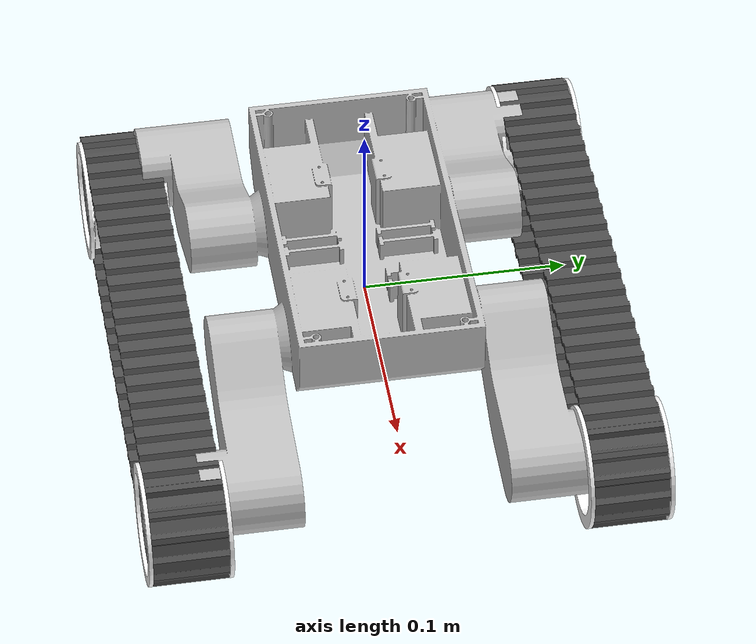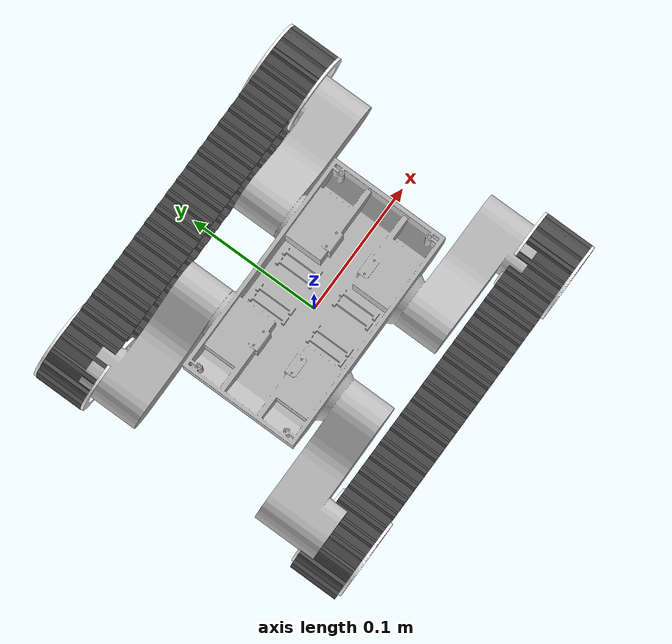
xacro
<?xml version="1.0" encoding="utf-8"?>
<robot
  name="rover">
  <link
    name="base_link">
    <inertial>
      <origin
        xyz="0.00130991626705053 3.49863639654621E-08 -0.00547333121816359"
        rpy="0 0 0" />
      <mass
        value="0.84121706270277" />
      <inertia
        ixx="0.000471900739611814"
        ixy="-2.09182785151012E-08"
        ixz="-1.51956152423411E-05"
        iyy="0.00136894339262334"
        iyz="7.11926294463079E-07"
        izz="0.00158904161906431" />
    </inertial>
    <visual>
      <origin
        xyz="0 0 0"
        rpy="0 0 0" />
      <geometry>
        <mesh
          filename="file:///home/anonymous/dev_ws/src/rover/meshes/base_link.STL" />
      </geometry>
      <material
        name="">
        <color
          rgba="0.752941176470588 0.752941176470588 0.752941176470588 1" />
      </material>
    </visual>
    <collision>
      <origin
        xyz="0 0 0"
        rpy="0 0 0" />
      <geometry>
        <mesh
          filename="file:///home/anonymous/dev_ws/src/rover/meshes/base_link.STL" />
      </geometry>
    </collision>
  </link>

  <gazebo reference="base_link">
    <material>Gazebo/White</material>
    <kp>500000.0</kp>
    <kd>100.0</kd>
  </gazebo>

  <link
    name="front_right_wheel">
    <inertial>
      <origin
        xyz="-8.80747558218431E-12 -4.55740722937747E-11 -0.018857267595084"
        rpy="0 0 0" />
      <mass
        value="0.0169810669319342" />
      <inertia
        ixx="6.69284229296301E-06"
        ixy="-1.60145737158755E-14"
        ixz="-3.42445131865195E-14"
        iyy="6.69284232761491E-06"
        iyz="6.23321803047746E-15"
        izz="9.06807752001078E-06" />
    </inertial>
    <visual>
      <origin
        xyz="0 0 0"
        rpy="0 0 0" />
      <geometry>
        <mesh
          filename="file:///home/anonymous/dev_ws/src/rover/meshes/front_right_wheel.STL" />
      </geometry>
      <material
        name="">
        <color
          rgba="1 1 1 1" />
      </material>
    </visual>
    <collision>
      <origin
        xyz="0 0 0"
        rpy="0 0 0" />
      <geometry>
        <mesh
          filename="file:///home/anonymous/dev_ws/src/rover/meshes/front_right_wheel.STL" />
      </geometry>
    </collision>
  </link>
  <gazebo reference="front_right_wheel">
    <material>Gazebo/White</material>
    <mu1>1</mu1>
    <mu2>1</mu2>
    <kp>500000.0</kp>
    <kd>100.0</kd>
    <minDepth>0.001</minDepth>
    <maxVel>0.1</maxVel>
  </gazebo>

  <joint
    name="base_link_to_front_right_wheel"
    type="continuous">
    <origin
      xyz="0.11729 -0.127 -0.025435"
      rpy="1.5708 -1.5708 0" />
    <parent
      link="base_link" />
    <child
      link="front_right_wheel" />
    <axis
      xyz="0 0 -1" />
  </joint>

  <link
    name="front_left_wheel">
    <inertial>
      <origin
        xyz="-3.26679377993244E-11 -3.29753169214797E-11 -0.018857267595084"
        rpy="0 0 0" />
      <mass
        value="0.0169810669319342" />
      <inertia
        ixx="6.69284228887819E-06"
        ixy="9.91131188776749E-15"
        ixz="-2.49917726405671E-14"
        iyy="6.69284233169973E-06"
        iyz="2.42270686557319E-14"
        izz="9.06807752001078E-06" />
    </inertial>
    <visual>
      <origin
        xyz="0 0 0"
        rpy="0 0 0" />
      <geometry>
        <mesh
          filename="file:///home/anonymous/dev_ws/src/rover/meshes/front_left_wheel.STL" />
      </geometry>
      <material
        name="">
        <color
          rgba="1 1 1 1" />
      </material>
    </visual>
    <collision>
      <origin
        xyz="0 0 0"
        rpy="0 0 0" />
      <geometry>
        <mesh
          filename="file:///home/anonymous/dev_ws/src/rover/meshes/front_left_wheel.STL" />
      </geometry>
    </collision>
  </link>
  <gazebo reference="front_left_wheel">
    <material>Gazebo/White</material>
    <mu1>1</mu1>
    <mu2>1</mu2>
    <kp>500000.0</kp>
    <kd>100.0</kd>
    <minDepth>0.001</minDepth>
    <maxVel>0.1</maxVel>
  </gazebo>

  <joint
    name="base_link_to_front_left_wheel"
    type="continuous">
    <origin
      xyz="0.11886 0.127 -0.019032"
      rpy="1.5708 0 3.1416" />
    <parent
      link="base_link" />
    <child
      link="front_left_wheel" />
    <axis
      xyz="0 0 -1" />
  </joint>

  <link
    name="bottom_right_wheel">
    <inertial>
      <origin
        xyz="2.91839191701726E-11 -3.60952205624709E-11 -0.018857267595084"
        rpy="0 0 0" />
      <mass
        value="0.0169810669319343" />
      <inertia
        ixx="6.69284232901609E-06"
        ixy="-1.43509532055096E-14"
        ixz="-2.68277882490126E-14"
        iyy="6.69284229156184E-06"
        iyz="-2.21767763461171E-14"
        izz="9.06807752001078E-06" />
    </inertial>
    <visual>
      <origin
        xyz="0 0 0"
        rpy="0 0 0" />
      <geometry>
        <mesh
          filename="file:///home/anonymous/dev_ws/src/rover/meshes/bottom_right_wheel.STL" />
      </geometry>
      <material
        name="">
        <color
          rgba="1 1 1 1" />
      </material>
    </visual>
    <collision>
      <origin
        xyz="0 0 0"
        rpy="0 0 0" />
      <geometry>
        <mesh
          filename="file:///home/anonymous/dev_ws/src/rover/meshes/bottom_right_wheel.STL" />
      </geometry>
    </collision>
  </link>
    <gazebo reference="bottom_right_wheel">
    <mu1>1</mu1>
    <mu2>1</mu2>
    <kp>500000.0</kp>
    <kd>100.0</kd>
    <minDepth>0.001</minDepth>
    <maxVel>0.1</maxVel>
  </gazebo>

  <joint
    name="base_link_bottom_right_wheel"
    type="continuous">
    <origin
      xyz="-0.11353 -0.127 -0.029416"
      rpy="1.5708 0 0" />
    <parent
      link="base_link" />
    <child
      link="bottom_right_wheel" />
    <axis
      xyz="0 0 -1" />
  </joint>

  <link
    name="bottom_left_wheel">
    <inertial>
      <origin
        xyz="-1.02049202421739E-11 4.52816482227059E-11 -0.0188572675950841"
        rpy="0 0 0" />
      <mass
        value="0.0169810669319342" />
      <inertia
        ixx="6.69284231029886E-06"
        ixy="-2.35935358930951E-14"
        ixz="3.38705119976577E-14"
        iyy="6.69284231027906E-06"
        iyz="8.02048078850473E-15"
        izz="9.06807752001078E-06" />
    </inertial>
    <visual>
      <origin
        xyz="0 0 0"
        rpy="0 0 0" />
      <geometry>
        <mesh
          filename="file:///home/anonymous/dev_ws/src/rover/meshes/bottom_left_wheel.STL" />
      </geometry>
      <material
        name="">
        <color
          rgba="1 1 1 1" />
      </material>
    </visual>
    <collision>
      <origin
        xyz="0 0 0"
        rpy="0 0 0" />
      <geometry>
        <mesh
          filename="file:///home/anonymous/dev_ws/src/rover/meshes/bottom_left_wheel.STL" />
      </geometry>
    </collision>
  </link>
  <gazebo reference="bottom_left_wheel">
    <material>Gazebo/White</material>
    <mu1>1</mu1>
    <mu2>1</mu2>
    <kp>500000.0</kp>
    <kd>100.0</kd>
    <minDepth>0.001</minDepth>
    <maxVel>0.1</maxVel>
  </gazebo>

  <joint
    name="base_link_to_bottom_left_wheel"
    type="continuous">
    <origin
      xyz="-0.11544 0.127 -0.023104"
      rpy="1.5708 0 3.1416" />
    <parent
      link="base_link" />
    <child
      link="bottom_left_wheel" />
    <axis
      xyz="0 0 -1" />
  </joint>

  <link
    name="right_tread">
    <inertial>
      <origin
        xyz="-0.00948575511995705 -0.0271678464476261 -1.2490009027033E-16"
        rpy="0 0 0" />
      <mass
        value="0.0467186064325548" />
      <inertia
        ixx="5.36340024147205E-06"
        ixy="-8.0460039506287E-10"
        ixz="-3.45117246555812E-23"
        iyy="5.40913175843455E-06"
        iyz="-4.90909677685799E-22"
        izz="1.1290329887867E-07" />
    </inertial>
    <visual>
      <origin
        xyz="0 0 0"
        rpy="0 0 0" />
      <geometry>
        <mesh
          filename="file:///home/anonymous/dev_ws/src/rover/meshes/right_tread.STL" />
      </geometry>
      <material
        name="">
        <color
          rgba="0.298039215686275 0.298039215686275 0.298039215686275 1" />
      </material>
    </visual>
    <collision>
      <origin
        xyz="0 0 0"
        rpy="0 0 0" />
      <geometry>
        <mesh
          filename="file:///home/anonymous/dev_ws/src/rover/meshes/right_tread.STL" />
      </geometry>
    </collision>
  </link>
  <gazebo reference="right_tread">
    <material>Gazebo/Black</material>
    <mu1>1</mu1>
    <mu2>1</mu2>
    <kp>500000.0</kp>
    <kd>100.0</kd>
    <minDepth>0.001</minDepth>
    <maxVel>0.1</maxVel>
  </gazebo>

  <joint
    name="base_link_right_tread"
    type="fixed">
    <origin
      xyz="0.0092938 -0.1065 -0.00029628"
      rpy="1.5708 0 0" />
    <parent
      link="base_link" />
    <child
      link="right_tread" />
    <axis
      xyz="0 0 0" />
  </joint>

  <link
    name="left_tread">
    <inertial>
      <origin
        xyz="0.00948575511995705 -0.0271678464476261 5.55111512312578E-17"
        rpy="0 0 0" />
      <mass
        value="0.0467186064325548" />
      <inertia
        ixx="5.36340024147205E-06"
        ixy="8.04600395063051E-10"
        ixz="1.25577536594476E-22"
        iyy="5.40913175843456E-06"
        iyz="6.06528303379636E-22"
        izz="1.12903298878676E-07" />
    </inertial>
    <visual>
      <origin
        xyz="0 0 0"
        rpy="0 0 0" />
      <geometry>
        <mesh
          filename="file:///home/anonymous/dev_ws/src/rover/meshes/left_tread.STL" />
      </geometry>
      <material
        name="">
        <color
          rgba="0.298039215686275 0.298039215686275 0.298039215686275 1" />
      </material>
    </visual>
    <collision>
      <origin
        xyz="0 0 0"
        rpy="0 0 0" />
      <geometry>
        <mesh
          filename="file:///home/anonymous/dev_ws/src/rover/meshes/left_tread.STL" />
      </geometry>
    </collision>
  </link>
  <gazebo reference="left_tread">
    <material>Gazebo/Black</material>
    <mu1>1</mu1>
    <mu2>1</mu2>
    <kp>500000.0</kp>
    <kd>100.0</kd>
    <minDepth>0.001</minDepth>
    <maxVel>0.1</maxVel>
  </gazebo>

  <joint
    name="base_link_to_left_tread"
    type="fixed">
    <origin
      xyz="0.010862 0.1065 0.0061069"
      rpy="1.5708 0 3.1416" />
    <parent
      link="base_link" />
    <child
      link="left_tread" />
    <axis
      xyz="0 0 0" />
  </joint>

</robot>
